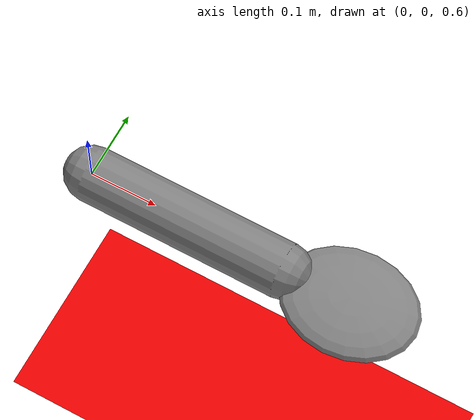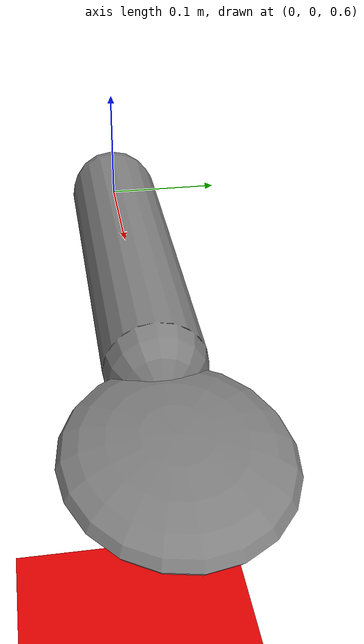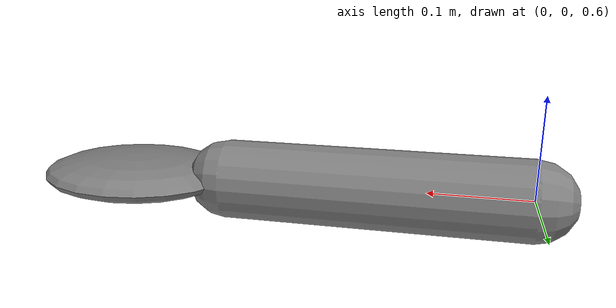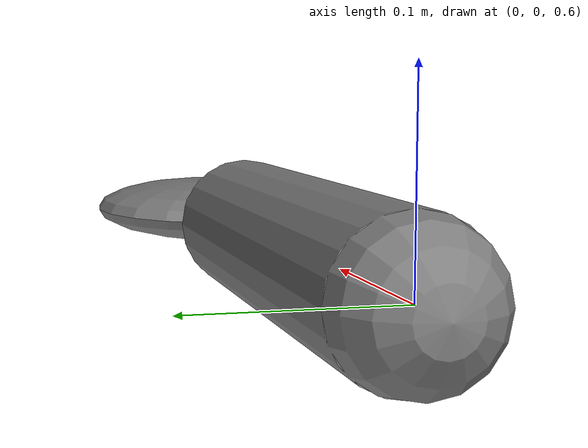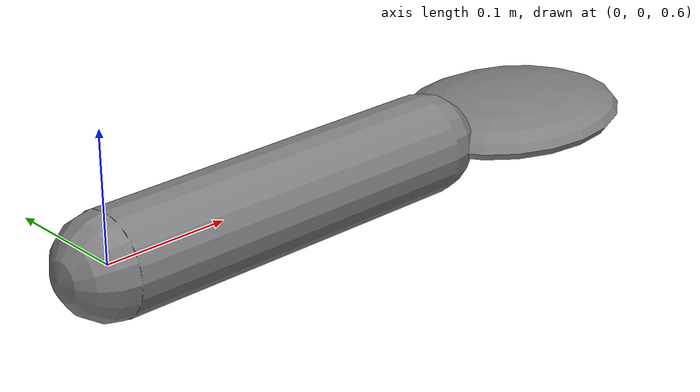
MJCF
<mujoco>
    <worldbody>
        <light diffuse=".5 .5 .5" pos="0 0 3" dir="0 0 -1"/>
        <geom type="plane" size="1 1 0.1" rgba=".9 0 0 1"/>
        <body>
            <geom type="capsule" fromto="0 0 0.6  0.3 0 0.6" size="0.04"/>
            <joint name="jnt1" type="hinge" pos="0 0 0.6" axis="0 1 0"/>
            <body>
                <geom type="ellipsoid" pos="0.4 0 0.6" size="0.1 0.08 0.02"/>
                <joint name="jnt2" type="hinge" pos="0.3 0 0.6" axis="0 1 0"/>
            </body>
        </body>
    </worldbody>

    <actuator>

        <motor name="act1" joint="jnt1"/>
        <position name="act2" joint="jnt2" kp="10"/>

    </actuator>

</mujoco>
